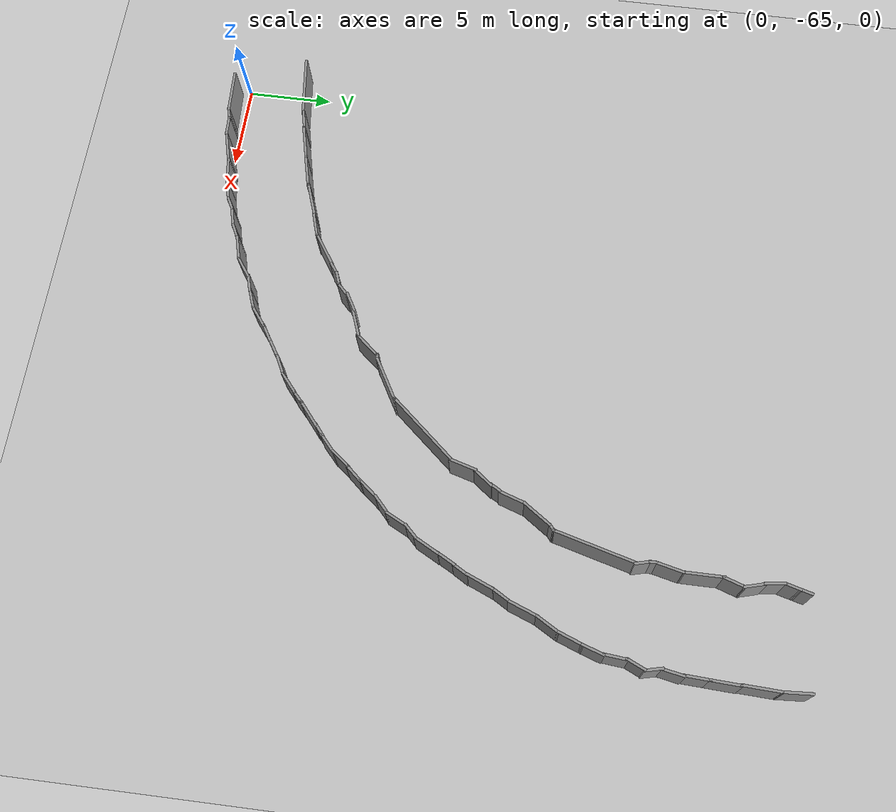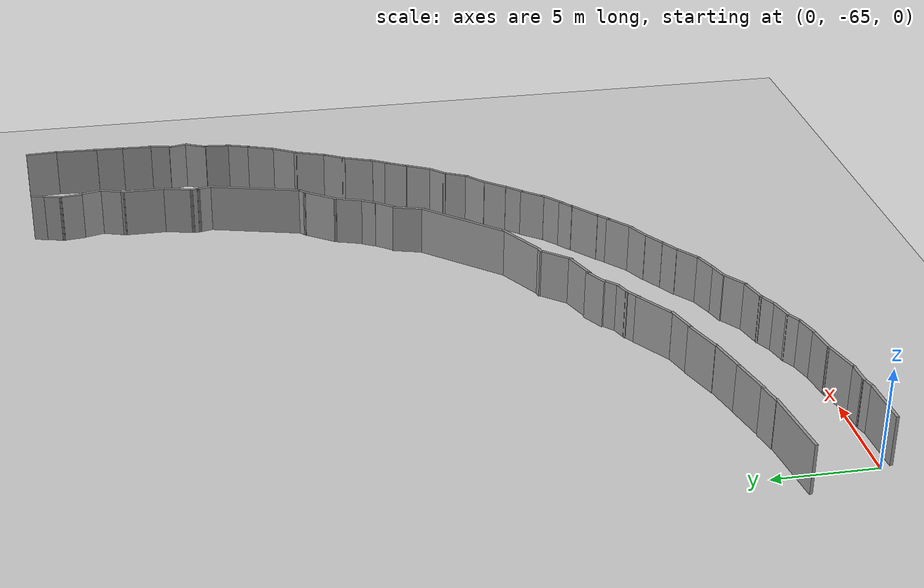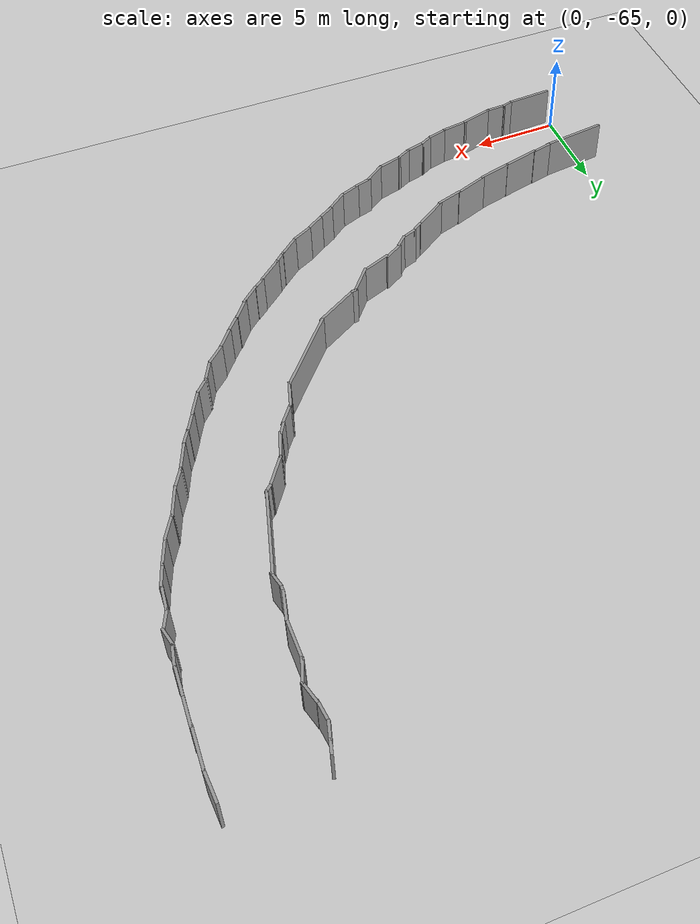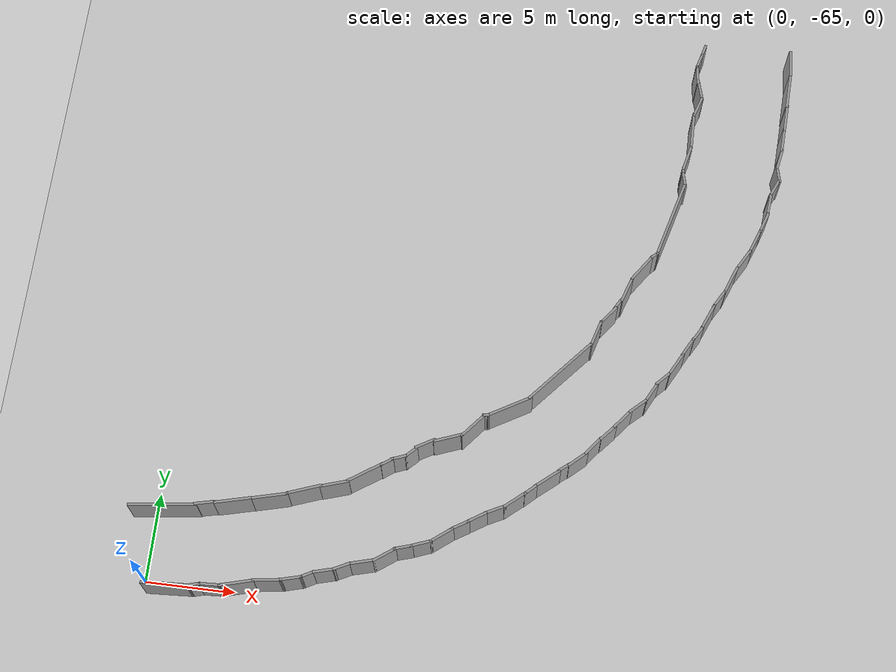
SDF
<sdf version="1.6">
 <world name="default">
  <model name="ground_plane">
   <static>1</static>
   <link name="link">
    <collision name="collision">
     <geometry><plane><normal>0 0 1</normal><size>100 100</size></plane></geometry>
     <surface><friction><ode><mu>100</mu><mu2>50</mu2></ode></friction></surface>
    </collision>
    <visual name="visual">
     <cast_shadows>0</cast_shadows>
     <geometry><plane><normal>0 0 1</normal><size>100 100</size></plane></geometry>
     <material>
      <script><uri>file://media/materials/scripts/gazebo.material</uri><name>Gazebo/Grey</name></script>
     </material>
    </visual>
   </link>
  </model>
  <model name="yuvarlak_sonnn">
   <pose>8.74042 -31.6469 0 0 -0 0</pose>
   <link name="Wall_100">
    <collision name="Wall_100_Collision">
     <geometry><box><size>1.5 0.15 2.5</size></box></geometry>
     <pose>0 0 1.25 0 -0 0</pose>
    </collision>
    <visual name="Wall_100_Visual">
     <pose>0 0 1.25 0 -0 0</pose>
     <geometry><box><size>1.5 0.15 2.5</size></box></geometry>
     <material>
      <script><uri>file://media/materials/scripts/gazebo.material</uri><name>Gazebo/Grey</name></script>
      <ambient>1 1 1 1</ambient>
     </material>
    </visual>
    <pose>3.07036 -31.3705 0 0 -0 0.261799</pose>
   </link>
   <link name="Wall_101">
    <collision name="Wall_101_Collision">
     <geometry><box><size>1.42727 0.15 2.5</size></box></geometry>
     <pose>0 0 1.25 0 -0 0</pose>
    </collision>
    <visual name="Wall_101_Visual">
     <pose>0 0 1.25 0 -0 0</pose>
     <geometry><box><size>1.42727 0.15 2.5</size></box></geometry>
     <material>
      <script><uri>file://media/materials/scripts/gazebo.material</uri><name>Gazebo/Grey</name></script>
      <ambient>1 1 1 1</ambient>
     </material>
    </visual>
    <pose>4.2711 -30.8225 0 0 -0 0.624356</pose>
   </link>
   <link name="Wall_102">
    <collision name="Wall_102_Collision">
     <geometry><box><size>1.0851 0.15 2.5</size></box></geometry>
     <pose>0 0 1.25 0 -0 0</pose>
    </collision>
    <visual name="Wall_102_Visual">
     <pose>0 0 1.25 0 -0 0</pose>
     <geometry><box><size>1.0851 0.15 2.5</size></box></geometry>
     <material>
      <script><uri>file://media/materials/scripts/gazebo.material</uri><name>Gazebo/Grey</name></script>
      <ambient>1 1 1 1</ambient>
     </material>
    </visual>
    <pose>5.21765 -30.297 0 0 -0 0.286317</pose>
   </link>
   <link name="Wall_103">
    <collision name="Wall_103_Collision">
     <geometry><box><size>1.24414 0.15 2.5</size></box></geometry>
     <pose>0 0 1.25 0 -0 0</pose>
    </collision>
    <visual name="Wall_103_Visual">
     <pose>0 0 1.25 0 -0 0</pose>
     <geometry><box><size>1.24414 0.15 2.5</size></box></geometry>
     <material>
      <script><uri>file://media/materials/scripts/gazebo.material</uri><name>Gazebo/Grey</name></script>
      <ambient>1 1 1 1</ambient>
     </material>
    </visual>
    <pose>6.15726 -29.9702 0 0 -0 0.364101</pose>
   </link>
   <link name="Wall_104">
    <collision name="Wall_104_Collision">
     <geometry><box><size>1.47845 0.15 2.5</size></box></geometry>
     <pose>0 0 1.25 0 -0 0</pose>
    </collision>
    <visual name="Wall_104_Visual">
     <pose>0 0 1.25 0 -0 0</pose>
     <geometry><box><size>1.47845 0.15 2.5</size></box></geometry>
     <material>
      <script><uri>file://media/materials/scripts/gazebo.material</uri><name>Gazebo/Grey</name></script>
      <ambient>1 1 1 1</ambient>
     </material>
    </visual>
    <pose>7.2128 -29.3674 0 0 -0 0.66124</pose>
   </link>
   <link name="Wall_105">
    <collision name="Wall_105_Collision">
     <geometry><box><size>1.11262 0.15 2.5</size></box></geometry>
     <pose>0 0 1.25 0 -0 0</pose>
    </collision>
    <visual name="Wall_105_Visual">
     <pose>0 0 1.25 0 -0 0</pose>
     <geometry><box><size>1.11262 0.15 2.5</size></box></geometry>
     <material>
      <script><uri>file://media/materials/scripts/gazebo.material</uri><name>Gazebo/Grey</name></script>
      <ambient>1 1 1 1</ambient>
     </material>
    </visual>
    <pose>8.12806 -28.7093 0 0 -0 0.546743</pose>
   </link>
   <link name="Wall_106">
    <collision name="Wall_106_Collision">
     <geometry><box><size>1.26237 0.15 2.5</size></box></geometry>
     <pose>0 0 1.25 0 -0 0</pose>
    </collision>
    <visual name="Wall_106_Visual">
     <pose>0 0 1.25 0 -0 0</pose>
     <geometry><box><size>1.26237 0.15 2.5</size></box></geometry>
     <material>
      <script><uri>file://media/materials/scripts/gazebo.material</uri><name>Gazebo/Grey</name></script>
      <ambient>1 1 1 1</ambient>
     </material>
    </visual>
    <pose>8.98845 -28.1607 0 0 -0 0.566293</pose>
   </link>
   <link name="Wall_107">
    <collision name="Wall_107_Collision">
     <geometry><box><size>1.23903 0.15 2.5</size></box></geometry>
     <pose>0 0 1.25 0 -0 0</pose>
    </collision>
    <visual name="Wall_107_Visual">
     <pose>0 0 1.25 0 -0 0</pose>
     <geometry><box><size>1.23903 0.15 2.5</size></box></geometry>
     <material>
      <script><uri>file://media/materials/scripts/gazebo.material</uri><name>Gazebo/Grey</name></script>
      <ambient>1 1 1 1</ambient>
     </material>
    </visual>
    <pose>9.92407 -27.6175 0 0 -0 0.466349</pose>
   </link>
   <link name="Wall_108">
    <collision name="Wall_108_Collision">
     <geometry><box><size>1.50096 0.15 2.5</size></box></geometry>
     <pose>0 0 1.25 0 -0 0</pose>
    </collision>
    <visual name="Wall_108_Visual">
     <pose>0 0 1.25 0 -0 0</pose>
     <geometry><box><size>1.50096 0.15 2.5</size></box></geometry>
     <material>
      <script><uri>file://media/materials/scripts/gazebo.material</uri><name>Gazebo/Grey</name></script>
      <ambient>1 1 1 1</ambient>
     </material>
    </visual>
    <pose>10.9447 -26.9346 0 0 -0 0.705649</pose>
   </link>
   <link name="Wall_109">
    <collision name="Wall_109_Collision">
     <geometry><box><size>0.858084 0.15 2.5</size></box></geometry>
     <pose>0 0 1.25 0 -0 0</pose>
    </collision>
    <visual name="Wall_109_Visual">
     <pose>0 0 1.25 0 -0 0</pose>
     <geometry><box><size>0.858084 0.15 2.5</size></box></geometry>
     <material>
      <script><uri>file://media/materials/scripts/gazebo.material</uri><name>Gazebo/Grey</name></script>
      <ambient>1 1 1 1</ambient>
     </material>
    </visual>
    <pose>11.7187 -26.2761 0 0 -0 0.746849</pose>
   </link>
   <link name="Wall_110">
    <collision name="Wall_110_Collision">
     <geometry><box><size>1.72755 0.15 2.5</size></box></geometry>
     <pose>0 0 1.25 0 -0 0</pose>
    </collision>
    <visual name="Wall_110_Visual">
     <pose>0 0 1.25 0 -0 0</pose>
     <geometry><box><size>1.72755 0.15 2.5</size></box></geometry>
     <material>
      <script><uri>file://media/materials/scripts/gazebo.material</uri><name>Gazebo/Grey</name></script>
      <ambient>1 1 1 1</ambient>
     </material>
    </visual>
    <pose>12.5647 -25.5311 0 0 -0 0.693986</pose>
   </link>
   <link name="Wall_111">
    <collision name="Wall_111_Collision">
     <geometry><box><size>0.824869 0.15 2.5</size></box></geometry>
     <pose>0 0 1.25 0 -0 0</pose>
    </collision>
    <visual name="Wall_111_Visual">
     <pose>0 0 1.25 0 -0 0</pose>
     <geometry><box><size>0.824869 0.15 2.5</size></box></geometry>
     <material>
      <script><uri>file://media/materials/scripts/gazebo.material</uri><name>Gazebo/Grey</name></script>
      <ambient>1 1 1 1</ambient>
     </material>
    </visual>
    <pose>13.4335 -24.7838 0 0 -0 0.67983</pose>
   </link>
   <link name="Wall_112">
    <collision name="Wall_112_Collision">
     <geometry><box><size>1.3167 0.15 2.5</size></box></geometry>
     <pose>0 0 1.25 0 -0 0</pose>
    </collision>
    <visual name="Wall_112_Visual">
     <pose>0 0 1.25 0 -0 0</pose>
     <geometry><box><size>1.3167 0.15 2.5</size></box></geometry>
     <material>
      <script><uri>file://media/materials/scripts/gazebo.material</uri><name>Gazebo/Grey</name></script>
      <ambient>1 1 1 1</ambient>
     </material>
    </visual>
    <pose>14.1307 -24.2134 0 0 -0 0.72975</pose>
   </link>
   <link name="Wall_113">
    <collision name="Wall_113_Collision">
     <geometry><box><size>1.33483 0.15 2.5</size></box></geometry>
     <pose>0 0 1.25 0 -0 0</pose>
    </collision>
    <visual name="Wall_113_Visual">
     <pose>0 0 1.25 0 -0 0</pose>
     <geometry><box><size>1.33483 0.15 2.5</size></box></geometry>
     <material>
      <script><uri>file://media/materials/scripts/gazebo.material</uri><name>Gazebo/Grey</name></script>
      <ambient>1 1 1 1</ambient>
     </material>
    </visual>
    <pose>14.9006 -23.3584 0 0 -0 0.905511</pose>
   </link>
   <link name="Wall_114">
    <collision name="Wall_114_Collision">
     <geometry><box><size>1.19384 0.15 2.5</size></box></geometry>
     <pose>0 0 1.25 0 -0 0</pose>
    </collision>
    <visual name="Wall_114_Visual">
     <pose>0 0 1.25 0 -0 0</pose>
     <geometry><box><size>1.19384 0.15 2.5</size></box></geometry>
     <material>
      <script><uri>file://media/materials/scripts/gazebo.material</uri><name>Gazebo/Grey</name></script>
      <ambient>1 1 1 1</ambient>
     </material>
    </visual>
    <pose>15.6416 -22.5005 0 0 -0 0.849315</pose>
   </link>
   <link name="Wall_115">
    <collision name="Wall_115_Collision">
     <geometry><box><size>1.40101 0.15 2.5</size></box></geometry>
     <pose>0 0 1.25 0 -0 0</pose>
    </collision>
    <visual name="Wall_115_Visual">
     <pose>0 0 1.25 0 -0 0</pose>
     <geometry><box><size>1.40101 0.15 2.5</size></box></geometry>
     <material>
      <script><uri>file://media/materials/scripts/gazebo.material</uri><name>Gazebo/Grey</name></script>
      <ambient>1 1 1 1</ambient>
     </material>
    </visual>
    <pose>16.3609 -21.6234 0 0 -0 0.887897</pose>
   </link>
   <link name="Wall_116">
    <collision name="Wall_116_Collision">
     <geometry><box><size>1.24258 0.15 2.5</size></box></geometry>
     <pose>0 0 1.25 0 -0 0</pose>
    </collision>
    <visual name="Wall_116_Visual">
     <pose>0 0 1.25 0 -0 0</pose>
     <geometry><box><size>1.24258 0.15 2.5</size></box></geometry>
     <material>
      <script><uri>file://media/materials/scripts/gazebo.material</uri><name>Gazebo/Grey</name></script>
      <ambient>1 1 1 1</ambient>
     </material>
    </visual>
    <pose>17.1372 -20.7678 0 0 -0 0.744804</pose>
   </link>
   <link name="Wall_117">
    <collision name="Wall_117_Collision">
     <geometry><box><size>1.37168 0.15 2.5</size></box></geometry>
     <pose>0 0 1.25 0 -0 0</pose>
    </collision>
    <visual name="Wall_117_Visual">
     <pose>0 0 1.25 0 -0 0</pose>
     <geometry><box><size>1.37168 0.15 2.5</size></box></geometry>
     <material>
      <script><uri>file://media/materials/scripts/gazebo.material</uri><name>Gazebo/Grey</name></script>
      <ambient>1 1 1 1</ambient>
     </material>
    </visual>
    <pose>17.8361 -19.8532 0 0 -0 1.09984</pose>
   </link>
   <link name="Wall_118">
    <collision name="Wall_118_Collision">
     <geometry><box><size>1.00834 0.15 2.5</size></box></geometry>
     <pose>0 0 1.25 0 -0 0</pose>
    </collision>
    <visual name="Wall_118_Visual">
     <pose>0 0 1.25 0 -0 0</pose>
     <geometry><box><size>1.00834 0.15 2.5</size></box></geometry>
     <material>
      <script><uri>file://media/materials/scripts/gazebo.material</uri><name>Gazebo/Grey</name></script>
      <ambient>1 1 1 1</ambient>
     </material>
    </visual>
    <pose>18.3915 -19.0004 0 0 -0 0.801969</pose>
   </link>
   <link name="Wall_119">
    <collision name="Wall_119_Collision">
     <geometry><box><size>1.58797 0.15 2.5</size></box></geometry>
     <pose>0 0 1.25 0 -0 0</pose>
    </collision>
    <visual name="Wall_119_Visual">
     <pose>0 0 1.25 0 -0 0</pose>
     <geometry><box><size>1.58797 0.15 2.5</size></box></geometry>
     <material>
      <script><uri>file://media/materials/scripts/gazebo.material</uri><name>Gazebo/Grey</name></script>
      <ambient>1 1 1 1</ambient>
     </material>
    </visual>
    <pose>19.0475 -18.0571 0 0 -0 1.08217</pose>
   </link>
   <link name="Wall_120">
    <collision name="Wall_120_Collision">
     <geometry><box><size>1.23903 0.15 2.5</size></box></geometry>
     <pose>0 0 1.25 0 -0 0</pose>
    </collision>
    <visual name="Wall_120_Visual">
     <pose>0 0 1.25 0 -0 0</pose>
     <geometry><box><size>1.23903 0.15 2.5</size></box></geometry>
     <material>
      <script><uri>file://media/materials/scripts/gazebo.material</uri><name>Gazebo/Grey</name></script>
      <ambient>1 1 1 1</ambient>
     </material>
    </visual>
    <pose>19.6231 -16.9428 0 0 -0 1.07682</pose>
   </link>
   <link name="Wall_121">
    <collision name="Wall_121_Collision">
     <geometry><box><size>1 0.15 2.5</size></box></geometry>
     <pose>0 0 1.25 0 -0 0</pose>
    </collision>
    <visual name="Wall_121_Visual">
     <pose>0 0 1.25 0 -0 0</pose>
     <geometry><box><size>1 0.15 2.5</size></box></geometry>
     <material>
      <script><uri>file://media/materials/scripts/gazebo.material</uri><name>Gazebo/Grey</name></script>
      <ambient>1 1 1 1</ambient>
     </material>
    </visual>
    <pose>20.1139 -16.0953 0 0 -0 1.0472</pose>
   </link>
   <link name="Wall_122">
    <collision name="Wall_122_Collision">
     <geometry><box><size>1.69231 0.15 2.5</size></box></geometry>
     <pose>0 0 1.25 0 -0 0</pose>
    </collision>
    <visual name="Wall_122_Visual">
     <pose>0 0 1.25 0 -0 0</pose>
     <geometry><box><size>1.69231 0.15 2.5</size></box></geometry>
     <material>
      <script><uri>file://media/materials/scripts/gazebo.material</uri><name>Gazebo/Grey</name></script>
      <ambient>1 1 1 1</ambient>
     </material>
    </visual>
    <pose>20.6017 -15.0149 0 0 -0 1.17771</pose>
   </link>
   <link name="Wall_123">
    <collision name="Wall_123_Collision">
     <geometry><box><size>1.25 0.15 2.5</size></box></geometry>
     <pose>0 0 1.25 0 -0 0</pose>
    </collision>
    <visual name="Wall_123_Visual">
     <pose>0 0 1.25 0 -0 0</pose>
     <geometry><box><size>1.25 0.15 2.5</size></box></geometry>
     <material>
      <script><uri>file://media/materials/scripts/gazebo.material</uri><name>Gazebo/Grey</name></script>
      <ambient>1 1 1 1</ambient>
     </material>
    </visual>
    <pose>21.1519 -13.8464 0 0 -0 1.0472</pose>
   </link>
   <link name="Wall_124">
    <collision name="Wall_124_Collision">
     <geometry><box><size>1.78247 0.15 2.5</size></box></geometry>
     <pose>0 0 1.25 0 -0 0</pose>
    </collision>
    <visual name="Wall_124_Visual">
     <pose>0 0 1.25 0 -0 0</pose>
     <geometry><box><size>1.78247 0.15 2.5</size></box></geometry>
     <material>
      <script><uri>file://media/materials/scripts/gazebo.material</uri><name>Gazebo/Grey</name></script>
      <ambient>1 1 1 1</ambient>
     </material>
    </visual>
    <pose>21.7364 -12.5868 0 0 -0 1.20839</pose>
   </link>
   <link name="Wall_125">
    <collision name="Wall_125_Collision">
     <geometry><box><size>1.5 0.15 2.5</size></box></geometry>
     <pose>0 0 1.25 0 -0 0</pose>
    </collision>
    <visual name="Wall_125_Visual">
     <pose>0 0 1.25 0 -0 0</pose>
     <geometry><box><size>1.5 0.15 2.5</size></box></geometry>
     <material>
      <script><uri>file://media/materials/scripts/gazebo.material</uri><name>Gazebo/Grey</name></script>
      <ambient>1 1 1 1</ambient>
     </material>
    </visual>
    <pose>22.3633 -11.2591 0 0 -0 1.0472</pose>
   </link>
   <link name="Wall_126">
    <collision name="Wall_126_Collision">
     <geometry><box><size>1.52629 0.15 2.5</size></box></geometry>
     <pose>0 0 1.25 0 -0 0</pose>
    </collision>
    <visual name="Wall_126_Visual">
     <pose>0 0 1.25 0 -0 0</pose>
     <geometry><box><size>1.52629 0.15 2.5</size></box></geometry>
     <material>
      <script><uri>file://media/materials/scripts/gazebo.material</uri><name>Gazebo/Grey</name></script>
      <ambient>1 1 1 1</ambient>
     </material>
    </visual>
    <pose>22.9453 -10.0112 0 0 -0 1.2076</pose>
   </link>
   <link name="Wall_127">
    <collision name="Wall_127_Collision">
     <geometry><box><size>1.33509 0.15 2.5</size></box></geometry>
     <pose>0 0 1.25 0 -0 0</pose>
    </collision>
    <visual name="Wall_127_Visual">
     <pose>0 0 1.25 0 -0 0</pose>
     <geometry><box><size>1.33509 0.15 2.5</size></box></geometry>
     <material>
      <script><uri>file://media/materials/scripts/gazebo.material</uri><name>Gazebo/Grey</name></script>
      <ambient>1 1 1 1</ambient>
     </material>
    </visual>
    <pose>23.378 -8.80605 0 0 -0 1.24752</pose>
   </link>
   <link name="Wall_128">
    <collision name="Wall_128_Collision">
     <geometry><box><size>1.36924 0.15 2.5</size></box></geometry>
     <pose>0 0 1.25 0 -0 0</pose>
    </collision>
    <visual name="Wall_128_Visual">
     <pose>0 0 1.25 0 -0 0</pose>
     <geometry><box><size>1.36924 0.15 2.5</size></box></geometry>
     <material>
      <script><uri>file://media/materials/scripts/gazebo.material</uri><name>Gazebo/Grey</name></script>
      <ambient>1 1 1 1</ambient>
     </material>
    </visual>
    <pose>23.5937 -7.63736 0 0 -0 1.47531</pose>
   </link>
   <link name="Wall_129">
    <collision name="Wall_129_Collision">
     <geometry><box><size>1.20468 0.15 2.5</size></box></geometry>
     <pose>0 0 1.25 0 -0 0</pose>
    </collision>
    <visual name="Wall_129_Visual">
     <pose>0 0 1.25 0 -0 0</pose>
     <geometry><box><size>1.20468 0.15 2.5</size></box></geometry>
     <material>
      <script><uri>file://media/materials/scripts/gazebo.material</uri><name>Gazebo/Grey</name></script>
      <ambient>1 1 1 1</ambient>
     </material>
    </visual>
    <pose>23.8384 -6.54996 0 0 -0 1.14639</pose>
   </link>
   <link name="Wall_130">
    <collision name="Wall_130_Collision">
     <geometry><box><size>1.05244 0.15 2.5</size></box></geometry>
     <pose>0 0 1.25 0 -0 0</pose>
    </collision>
    <visual name="Wall_130_Visual">
     <pose>0 0 1.25 0 -0 0</pose>
     <geometry><box><size>1.05244 0.15 2.5</size></box></geometry>
     <material>
      <script><uri>file://media/materials/scripts/gazebo.material</uri><name>Gazebo/Grey</name></script>
      <ambient>1 1 1 1</ambient>
     </material>
    </visual>
    <pose>23.9824 -5.63028 0 0 -0 1.8028</pose>
   </link>
   <link name="Wall_131">
    <collision name="Wall_131_Collision">
     <geometry><box><size>1.28879 0.15 2.5</size></box></geometry>
     <pose>0 0 1.25 0 -0 0</pose>
    </collision>
    <visual name="Wall_131_Visual">
     <pose>0 0 1.25 0 -0 0</pose>
     <geometry><box><size>1.28879 0.15 2.5</size></box></geometry>
     <material>
      <script><uri>file://media/materials/scripts/gazebo.material</uri><name>Gazebo/Grey</name></script>
      <ambient>1 1 1 1</ambient>
     </material>
    </visual>
    <pose>24.0142 -4.63151 0 0 -0 1.38539</pose>
   </link>
   <link name="Wall_132">
    <collision name="Wall_132_Collision">
     <geometry><box><size>1.53245 0.15 2.5</size></box></geometry>
     <pose>0 0 1.25 0 -0 0</pose>
    </collision>
    <visual name="Wall_132_Visual">
     <pose>0 0 1.25 0 -0 0</pose>
     <geometry><box><size>1.53245 0.15 2.5</size></box></geometry>
     <material>
      <script><uri>file://media/materials/scripts/gazebo.material</uri><name>Gazebo/Grey</name></script>
      <ambient>1 1 1 1</ambient>
     </material>
    </visual>
    <pose>24.1244 -3.38158 0 0 -0 1.51894</pose>
   </link>
   <link name="Wall_133">
    <collision name="Wall_133_Collision">
     <geometry><box><size>1.71826 0.15 2.5</size></box></geometry>
     <pose>0 0 1.25 0 -0 0</pose>
    </collision>
    <visual name="Wall_133_Visual">
     <pose>0 0 1.25 0 -0 0</pose>
     <geometry><box><size>1.71826 0.15 2.5</size></box></geometry>
     <material>
      <script><uri>file://media/materials/scripts/gazebo.material</uri><name>Gazebo/Grey</name></script>
      <ambient>1 1 1 1</ambient>
     </material>
    </visual>
    <pose>24.198 -1.93866 0 0 -0 1.52261</pose>
   </link>
   <link name="Wall_134">
    <collision name="Wall_134_Collision">
     <geometry><box><size>2.22141 0.15 2.5</size></box></geometry>
     <pose>0 0 1.25 0 -0 0</pose>
    </collision>
    <visual name="Wall_134_Visual">
     <pose>0 0 1.25 0 -0 0</pose>
     <geometry><box><size>2.22141 0.15 2.5</size></box></geometry>
     <material>
      <script><uri>file://media/materials/scripts/gazebo.material</uri><name>Gazebo/Grey</name></script>
      <ambient>1 1 1 1</ambient>
     </material>
    </visual>
    <pose>24.2507 -0.120733 0 0 -0 1.52688</pose>
   </link>
   <link name="Wall_135">
    <collision name="Wall_135_Collision">
     <geometry><box><size>1.67425 0.15 2.5</size></box></geometry>
     <pose>0 0 1.25 0 -0 0</pose>
    </collision>
    <visual name="Wall_135_Visual">
     <pose>0 0 1.25 0 -0 0</pose>
     <geometry><box><size>1.67425 0.15 2.5</size></box></geometry>
     <material>
      <script><uri>file://media/materials/scripts/gazebo.material</uri><name>Gazebo/Grey</name></script>
      <ambient>1 1 1 1</ambient>
     </material>
    </visual>
    <pose>24.2494 1.70525 0 0 -0 1.63214</pose>
   </link>
   <link name="Wall_271">
    <collision name="Wall_271_Collision">
     <geometry><box><size>0.769947 0.15 2.5</size></box></geometry>
     <pose>0 0 1.25 0 -0 0</pose>
    </collision>
    <visual name="Wall_271_Visual">
     <pose>0 0 1.25 0 -0 0</pose>
     <geometry><box><size>0.769947 0.15 2.5</size></box></geometry>
     <material>
      <script><uri>file://media/materials/scripts/gazebo.material</uri><name>Gazebo/Grey</name></script>
      <ambient>1 1 1 1</ambient>
     </material>
    </visual>
    <pose>19.0454 1.9527 0 0 0 -1.82703</pose>
   </link>
   <link name="Wall_272">
    <collision name="Wall_272_Collision">
     <geometry><box><size>1 0.15 2.5</size></box></geometry>
     <pose>0 0 1.25 0 -0 0</pose>
    </collision>
    <visual name="Wall_272_Visual">
     <pose>0 0 1.25 0 -0 0</pose>
     <geometry><box><size>1 0.15 2.5</size></box></geometry>
     <material>
      <script><uri>file://media/materials/scripts/gazebo.material</uri><name>Gazebo/Grey</name></script>
      <ambient>1 1 1 1</ambient>
     </material>
    </visual>
    <pose>18.8568 1.24232 0 0 0 -1.8326</pose>
   </link>
   <link name="Wall_273">
    <collision name="Wall_273_Collision">
     <geometry><box><size>1.19076 0.15 2.5</size></box></geometry>
     <pose>0 0 1.25 0 -0 0</pose>
    </collision>
    <visual name="Wall_273_Visual">
     <pose>0 0 1.25 0 -0 0</pose>
     <geometry><box><size>1.19076 0.15 2.5</size></box></geometry>
     <material>
      <script><uri>file://media/materials/scripts/gazebo.material</uri><name>Gazebo/Grey</name></script>
      <ambient>1 1 1 1</ambient>
     </material>
    </visual>
    <pose>18.808 0.315034 0 0 0 -1.45295</pose>
   </link>
   <link name="Wall_274">
    <collision name="Wall_274_Collision">
     <geometry><box><size>1.25 0.15 2.5</size></box></geometry>
     <pose>0 0 1.25 0 -0 0</pose>
    </collision>
    <visual name="Wall_274_Visual">
     <pose>0 0 1.25 0 -0 0</pose>
     <geometry><box><size>1.25 0.15 2.5</size></box></geometry>
     <material>
      <script><uri>file://media/materials/scripts/gazebo.material</uri><name>Gazebo/Grey</name></script>
      <ambient>1 1 1 1</ambient>
     </material>
    </visual>
    <pose>19.0421 -0.732996 0 0 0 -1.309</pose>
   </link>
   <link name="Wall_275">
    <collision name="Wall_275_Collision">
     <geometry><box><size>1.34024 0.15 2.5</size></box></geometry>
     <pose>0 0 1.25 0 -0 0</pose>
    </collision>
    <visual name="Wall_275_Visual">
     <pose>0 0 1.25 0 -0 0</pose>
     <geometry><box><size>1.34024 0.15 2.5</size></box></geometry>
     <material>
      <script><uri>file://media/materials/scripts/gazebo.material</uri><name>Gazebo/Grey</name></script>
      <ambient>1 1 1 1</ambient>
     </material>
    </visual>
    <pose>18.9954 -1.82854 0 0 0 -1.89415</pose>
   </link>
   <link name="Wall_276">
    <collision name="Wall_276_Collision">
     <geometry><box><size>2.25 0.15 2.5</size></box></geometry>
     <pose>0 0 1.25 0 -0 0</pose>
    </collision>
    <visual name="Wall_276_Visual">
     <pose>0 0 1.25 0 -0 0</pose>
     <geometry><box><size>2.25 0.15 2.5</size></box></geometry>
     <material>
      <script><uri>file://media/materials/scripts/gazebo.material</uri><name>Gazebo/Grey</name></script>
      <ambient>1 1 1 1</ambient>
     </material>
    </visual>
    <pose>18.8063 -3.39629 0 0 0 -1.5708</pose>
   </link>
   <link name="Wall_277">
    <collision name="Wall_277_Collision">
     <geometry><box><size>1.6107 0.15 2.5</size></box></geometry>
     <pose>0 0 1.25 0 -0 0</pose>
    </collision>
    <visual name="Wall_277_Visual">
     <pose>0 0 1.25 0 -0 0</pose>
     <geometry><box><size>1.6107 0.15 2.5</size></box></geometry>
     <material>
      <script><uri>file://media/materials/scripts/gazebo.material</uri><name>Gazebo/Grey</name></script>
      <ambient>1 1 1 1</ambient>
     </material>
    </visual>
    <pose>18.6402 -5.20402 0 0 0 -1.80026</pose>
   </link>
   <link name="Wall_278">
    <collision name="Wall_278_Collision">
     <geometry><box><size>0.5 0.15 2.5</size></box></geometry>
     <pose>0 0 1.25 0 -0 0</pose>
    </collision>
    <visual name="Wall_278_Visual">
     <pose>0 0 1.25 0 -0 0</pose>
     <geometry><box><size>0.5 0.15 2.5</size></box></geometry>
     <material>
      <script><uri>file://media/materials/scripts/gazebo.material</uri><name>Gazebo/Grey</name></script>
      <ambient>1 1 1 1</ambient>
     </material>
    </visual>
    <pose>18.474 -6.09022 0 0 0 -1.5708</pose>
   </link>
   <link name="Wall_279">
    <collision name="Wall_279_Collision">
     <geometry><box><size>0.930244 0.15 2.5</size></box></geometry>
     <pose>0 0 1.25 0 -0 0</pose>
    </collision>
    <visual name="Wall_279_Visual">
     <pose>0 0 1.25 0 -0 0</pose>
     <geometry><box><size>0.930244 0.15 2.5</size></box></geometry>
     <material>
      <script><uri>file://media/materials/scripts/gazebo.material</uri><name>Gazebo/Grey</name></script>
      <ambient>1 1 1 1</ambient>
     </material>
    </visual>
    <pose>18.569 -6.64362 0 0 0 -1.32498</pose>
   </link>
   <link name="Wall_288">
    <collision name="Wall_288_Collision">
     <geometry><box><size>0.525324 0.15 2.5</size></box></geometry>
     <pose>0 0 1.25 0 -0 0</pose>
    </collision>
    <visual name="Wall_288_Visual">
     <pose>0 0 1.25 0 -0 0</pose>
     <geometry><box><size>0.525324 0.15 2.5</size></box></geometry>
     <material>
      <script><uri>file://media/materials/scripts/gazebo.material</uri><name>Gazebo/Grey</name></script>
      <ambient>1 1 1 1</ambient>
     </material>
    </visual>
    <pose>17.2818 -11.5924 0 0 0 -2.3973</pose>
   </link>
   <link name="Wall_289">
    <collision name="Wall_289_Collision">
     <geometry><box><size>1.92637 0.15 2.5</size></box></geometry>
     <pose>0 0 1.25 0 -0 0</pose>
    </collision>
    <visual name="Wall_289_Visual">
     <pose>0 0 1.25 0 -0 0</pose>
     <geometry><box><size>1.92637 0.15 2.5</size></box></geometry>
     <material>
      <script><uri>file://media/materials/scripts/gazebo.material</uri><name>Gazebo/Grey</name></script>
      <ambient>1 1 1 1</ambient>
     </material>
    </visual>
    <pose>16.638 -12.4497 0 0 0 -2.17659</pose>
   </link>
   <link name="Wall_290">
    <collision name="Wall_290_Collision">
     <geometry><box><size>1.61208 0.15 2.5</size></box></geometry>
     <pose>0 0 1.25 0 -0 0</pose>
    </collision>
    <visual name="Wall_290_Visual">
     <pose>0 0 1.25 0 -0 0</pose>
     <geometry><box><size>1.61208 0.15 2.5</size></box></geometry>
     <material>
      <script><uri>file://media/materials/scripts/gazebo.material</uri><name>Gazebo/Grey</name></script>
      <ambient>1 1 1 1</ambient>
     </material>
    </visual>
    <pose>15.9015 -13.8734 0 0 0 -1.89203</pose>
   </link>
   <link name="Wall_291">
    <collision name="Wall_291_Collision">
     <geometry><box><size>0.75 0.15 2.5</size></box></geometry>
     <pose>0 0 1.25 0 -0 0</pose>
    </collision>
    <visual name="Wall_291_Visual">
     <pose>0 0 1.25 0 -0 0</pose>
     <geometry><box><size>0.75 0.15 2.5</size></box></geometry>
     <material>
      <script><uri>file://media/materials/scripts/gazebo.material</uri><name>Gazebo/Grey</name></script>
      <ambient>1 1 1 1</ambient>
     </material>
    </visual>
    <pose>15.4741 -14.8269 0 0 0 -2.0944</pose>
   </link>
   <link name="Wall_292">
    <collision name="Wall_292_Collision">
     <geometry><box><size>1.31222 0.15 2.5</size></box></geometry>
     <pose>0 0 1.25 0 -0 0</pose>
    </collision>
    <visual name="Wall_292_Visual">
     <pose>0 0 1.25 0 -0 0</pose>
     <geometry><box><size>1.31222 0.15 2.5</size></box></geometry>
     <material>
      <script><uri>file://media/materials/scripts/gazebo.material</uri><name>Gazebo/Grey</name></script>
      <ambient>1 1 1 1</ambient>
     </material>
    </visual>
    <pose>15.0206 -15.5506 0 0 0 -2.21728</pose>
   </link>
   <link name="Wall_293">
    <collision name="Wall_293_Collision">
     <geometry><box><size>1.64663 0.15 2.5</size></box></geometry>
     <pose>0 0 1.25 0 -0 0</pose>
    </collision>
    <visual name="Wall_293_Visual">
     <pose>0 0 1.25 0 -0 0</pose>
     <geometry><box><size>1.64663 0.15 2.5</size></box></geometry>
     <material>
      <script><uri>file://media/materials/scripts/gazebo.material</uri><name>Gazebo/Grey</name></script>
      <ambient>1 1 1 1</ambient>
     </material>
    </visual>
    <pose>14.4179 -16.7338 0 0 0 -1.84981</pose>
   </link>
   <link name="Wall_294">
    <collision name="Wall_294_Collision">
     <geometry><box><size>4.81192 0.15 2.5</size></box></geometry>
     <pose>0 0 1.25 0 -0 0</pose>
    </collision>
    <visual name="Wall_294_Visual">
     <pose>0 0 1.25 0 -0 0</pose>
     <geometry><box><size>4.81192 0.15 2.5</size></box></geometry>
     <material>
      <script><uri>file://media/materials/scripts/gazebo.material</uri><name>Gazebo/Grey</name></script>
      <ambient>1 1 1 1</ambient>
     </material>
    </visual>
    <pose>12.6369 -19.2191 0 0 0 -2.28192</pose>
   </link>
   <link name="Wall_299">
    <collision name="Wall_299_Collision">
     <geometry><box><size>0.399537 0.15 2.5</size></box></geometry>
     <pose>0 0 1.25 0 -0 0</pose>
    </collision>
    <visual name="Wall_299_Visual">
     <pose>0 0 1.25 0 -0 0</pose>
     <geometry><box><size>0.399537 0.15 2.5</size></box></geometry>
     <material>
      <script><uri>file://media/materials/scripts/gazebo.material</uri><name>Gazebo/Grey</name></script>
      <ambient>1 1 1 1</ambient>
     </material>
    </visual>
    <pose>8.79417 -22.3048 0 0 0 -2.98365</pose>
   </link>
   <link name="Wall_300">
    <collision name="Wall_300_Collision">
     <geometry><box><size>1.76805 0.15 2.5</size></box></geometry>
     <pose>0 0 1.25 0 -0 0</pose>
    </collision>
    <visual name="Wall_300_Visual">
     <pose>0 0 1.25 0 -0 0</pose>
     <geometry><box><size>1.76805 0.15 2.5</size></box></geometry>
     <material>
      <script><uri>file://media/materials/scripts/gazebo.material</uri><name>Gazebo/Grey</name></script>
      <ambient>1 1 1 1</ambient>
     </material>
    </visual>
    <pose>8.15452 -23.0006 0 0 0 -2.26315</pose>
   </link>
   <link name="Wall_301">
    <collision name="Wall_301_Collision">
     <geometry><box><size>1.74473 0.15 2.5</size></box></geometry>
     <pose>0 0 1.25 0 -0 0</pose>
    </collision>
    <visual name="Wall_301_Visual">
     <pose>0 0 1.25 0 -0 0</pose>
     <geometry><box><size>1.74473 0.15 2.5</size></box></geometry>
     <material>
      <script><uri>file://media/materials/scripts/gazebo.material</uri><name>Gazebo/Grey</name></script>
      <ambient>1 1 1 1</ambient>
     </material>
    </visual>
    <pose>6.893 -23.8539 0 0 0 -2.77743</pose>
   </link>
   <link name="Wall_302">
    <collision name="Wall_302_Collision">
     <geometry><box><size>1.25 0.15 2.5</size></box></geometry>
     <pose>0 0 1.25 0 -0 0</pose>
    </collision>
    <visual name="Wall_302_Visual">
     <pose>0 0 1.25 0 -0 0</pose>
     <geometry><box><size>1.25 0.15 2.5</size></box></geometry>
     <material>
      <script><uri>file://media/materials/scripts/gazebo.material</uri><name>Gazebo/Grey</name></script>
      <ambient>1 1 1 1</ambient>
     </material>
    </visual>
    <pose>5.67161 -24.3315 0 0 0 -2.61799</pose>
   </link>
   <link name="Wall_303">
    <collision name="Wall_303_Collision">
     <geometry><box><size>0.84819 0.15 2.5</size></box></geometry>
     <pose>0 0 1.25 0 -0 0</pose>
    </collision>
    <visual name="Wall_303_Visual">
     <pose>0 0 1.25 0 -0 0</pose>
     <geometry><box><size>0.84819 0.15 2.5</size></box></geometry>
     <material>
      <script><uri>file://media/materials/scripts/gazebo.material</uri><name>Gazebo/Grey</name></script>
      <ambient>1 1 1 1</ambient>
     </material>
    </visual>
    <pose>4.94594 -24.9322 0 0 0 -2.3664</pose>
   </link>
   <link name="Wall_306">
    <collision name="Wall_306_Collision">
     <geometry><box><size>0.904327 0.15 2.5</size></box></geometry>
     <pose>0 0 1.25 0 -0 0</pose>
    </collision>
    <visual name="Wall_306_Visual">
     <pose>0 0 1.25 0 -0 0</pose>
     <geometry><box><size>0.904327 0.15 2.5</size></box></geometry>
     <material>
      <script><uri>file://media/materials/scripts/gazebo.material</uri><name>Gazebo/Grey</name></script>
      <ambient>1 1 1 1</ambient>
     </material>
    </visual>
    <pose>4.31306 -25.3095 0 0 0 -2.78126</pose>
   </link>
   <link name="Wall_307">
    <collision name="Wall_307_Collision">
     <geometry><box><size>0.820949 0.15 2.5</size></box></geometry>
     <pose>0 0 1.25 0 -0 0</pose>
    </collision>
    <visual name="Wall_307_Visual">
     <pose>0 0 1.25 0 -0 0</pose>
     <geometry><box><size>0.820949 0.15 2.5</size></box></geometry>
     <material>
      <script><uri>file://media/materials/scripts/gazebo.material</uri><name>Gazebo/Grey</name></script>
      <ambient>1 1 1 1</ambient>
     </material>
    </visual>
    <pose>3.71661 -25.6359 0 0 0 -2.52707</pose>
   </link>
   <link name="Wall_308">
    <collision name="Wall_308_Collision">
     <geometry><box><size>2.22818 0.15 2.5</size></box></geometry>
     <pose>0 0 1.25 0 -0 0</pose>
    </collision>
    <visual name="Wall_308_Visual">
     <pose>0 0 1.25 0 -0 0</pose>
     <geometry><box><size>2.22818 0.15 2.5</size></box></geometry>
     <material>
      <script><uri>file://media/materials/scripts/gazebo.material</uri><name>Gazebo/Grey</name></script>
      <ambient>1 1 1 1</ambient>
     </material>
    </visual>
    <pose>2.57965 -26.3777 0 0 0 -2.55061</pose>
   </link>
   <link name="Wall_309">
    <collision name="Wall_309_Collision">
     <geometry><box><size>1.63412 0.15 2.5</size></box></geometry>
     <pose>0 0 1.25 0 -0 0</pose>
    </collision>
    <visual name="Wall_309_Visual">
     <pose>0 0 1.25 0 -0 0</pose>
     <geometry><box><size>1.63412 0.15 2.5</size></box></geometry>
     <material>
      <script><uri>file://media/materials/scripts/gazebo.material</uri><name>Gazebo/Grey</name></script>
      <ambient>1 1 1 1</ambient>
     </material>
    </visual>
    <pose>1.00869 -27.2091 0 0 0 -2.83796</pose>
   </link>
   <link name="Wall_310">
    <collision name="Wall_310_Collision">
     <geometry><box><size>2.0491 0.15 2.5</size></box></geometry>
     <pose>0 0 1.25 0 -0 0</pose>
    </collision>
    <visual name="Wall_310_Visual">
     <pose>0 0 1.25 0 -0 0</pose>
     <geometry><box><size>2.0491 0.15 2.5</size></box></geometry>
     <material>
      <script><uri>file://media/materials/scripts/gazebo.material</uri><name>Gazebo/Grey</name></script>
      <ambient>1 1 1 1</ambient>
     </material>
    </visual>
    <pose>-0.591817 -27.7249 0 0 0 -2.79284</pose>
   </link>
   <link name="Wall_311">
    <collision name="Wall_311_Collision">
     <geometry><box><size>2.02266 0.15 2.5</size></box></geometry>
     <pose>0 0 1.25 0 -0 0</pose>
    </collision>
    <visual name="Wall_311_Visual">
     <pose>0 0 1.25 0 -0 0</pose>
     <geometry><box><size>2.02266 0.15 2.5</size></box></geometry>
     <material>
      <script><uri>file://media/materials/scripts/gazebo.material</uri><name>Gazebo/Grey</name></script>
      <ambient>1 1 1 1</ambient>
     </material>
    </visual>
    <pose>-2.3917 -28.3105 0 0 0 -2.89277</pose>
   </link>
   <link name="Wall_312">
    <collision name="Wall_312_Collision">
     <geometry><box><size>2.17184 0.15 2.5</size></box></geometry>
     <pose>0 0 1.25 0 -0 0</pose>
    </collision>
    <visual name="Wall_312_Visual">
     <pose>0 0 1.25 0 -0 0</pose>
     <geometry><box><size>2.17184 0.15 2.5</size></box></geometry>
     <material>
      <script><uri>file://media/materials/scripts/gazebo.material</uri><name>Gazebo/Grey</name></script>
      <ambient>1 1 1 1</ambient>
     </material>
    </visual>
    <pose>-4.32657 -28.7858 0 0 0 -2.89709</pose>
   </link>
   <link name="Wall_313">
    <collision name="Wall_313_Collision">
     <geometry><box><size>1.22289 0.15 2.5</size></box></geometry>
     <pose>0 0 1.25 0 -0 0</pose>
    </collision>
    <visual name="Wall_313_Visual">
     <pose>0 0 1.25 0 -0 0</pose>
     <geometry><box><size>1.22289 0.15 2.5</size></box></geometry>
     <material>
      <script><uri>file://media/materials/scripts/gazebo.material</uri><name>Gazebo/Grey</name></script>
      <ambient>1 1 1 1</ambient>
     </material>
    </visual>
    <pose>-5.86084 -29.1201 0 0 0 -2.91573</pose>
   </link>
   <link name="Wall_314">
    <collision name="Wall_314_Collision">
     <geometry><box><size>3.79258 0.15 2.5</size></box></geometry>
     <pose>0 0 1.25 0 -0 0</pose>
    </collision>
    <visual name="Wall_314_Visual">
     <pose>0 0 1.25 0 -0 0</pose>
     <geometry><box><size>3.79258 0.15 2.5</size></box></geometry>
     <material>
      <script><uri>file://media/materials/scripts/gazebo.material</uri><name>Gazebo/Grey</name></script>
      <ambient>1 1 1 1</ambient>
     </material>
    </visual>
    <pose>-8.16088 -29.492 0 0 0 -3.01987</pose>
   </link>
   <link name="Wall_371">
    <collision name="Wall_371_Collision">
     <geometry><box><size>2.75 0.15 2.5</size></box></geometry>
     <pose>0 0 1.25 0 -0 0</pose>
    </collision>
    <visual name="Wall_371_Visual">
     <pose>0 0 1.25 0 -0 0</pose>
     <geometry><box><size>2.75 0.15 2.5</size></box></geometry>
     <material>
      <script><uri>file://media/materials/scripts/gazebo.material</uri><name>Gazebo/Grey</name></script>
      <ambient>1 1 1 1</ambient>
     </material>
    </visual>
    <pose>10.0432 -21.6351 0 0 -0 0.523599</pose>
   </link>
   <link name="Wall_377">
    <collision name="Wall_377_Collision">
     <geometry><box><size>4.75 0.15 2.5</size></box></geometry>
     <pose>0 0 1.25 0 -0 0</pose>
    </collision>
    <visual name="Wall_377_Visual">
     <pose>0 0 1.25 0 -0 0</pose>
     <geometry><box><size>4.75 0.15 2.5</size></box></geometry>
     <material>
      <script><uri>file://media/materials/scripts/gazebo.material</uri><name>Gazebo/Grey</name></script>
      <ambient>1 1 1 1</ambient>
     </material>
    </visual>
    <pose>18.0151 -9.24364 0 0 -0 1.309</pose>
   </link>
   <link name="Wall_91">
    <collision name="Wall_91_Collision">
     <geometry><box><size>2.644 0.15 2.5</size></box></geometry>
     <pose>0 0 1.25 0 -0 0</pose>
    </collision>
    <visual name="Wall_91_Visual">
     <pose>0 0 1.25 0 -0 0</pose>
     <geometry><box><size>2.644 0.15 2.5</size></box></geometry>
     <material>
      <script><uri>file://media/materials/scripts/gazebo.material</uri><name>Gazebo/Grey</name></script>
      <ambient>1 1 1 1</ambient>
     </material>
    </visual>
    <pose>-7.26038 -33.8178 0 0 -0 0.051409</pose>
   </link>
   <link name="Wall_92">
    <collision name="Wall_92_Collision">
     <geometry><box><size>0.75 0.15 2.5</size></box></geometry>
     <pose>0 0 1.25 0 -0 0</pose>
    </collision>
    <visual name="Wall_92_Visual">
     <pose>0 0 1.25 0 -0 0</pose>
     <geometry><box><size>0.75 0.15 2.5</size></box></geometry>
     <material>
      <script><uri>file://media/materials/scripts/gazebo.material</uri><name>Gazebo/Grey</name></script>
      <ambient>1 1 1 1</ambient>
     </material>
    </visual>
    <pose>-5.70514 -33.6761 0 0 -0 0.261799</pose>
   </link>
   <link name="Wall_93">
    <collision name="Wall_93_Collision">
     <geometry><box><size>1.24557 0.15 2.5</size></box></geometry>
     <pose>0 0 1.25 0 -0 0</pose>
    </collision>
    <visual name="Wall_93_Visual">
     <pose>0 0 1.25 0 -0 0</pose>
     <geometry><box><size>1.24557 0.15 2.5</size></box></geometry>
     <material>
      <script><uri>file://media/materials/scripts/gazebo.material</uri><name>Gazebo/Grey</name></script>
      <ambient>1 1 1 1</ambient>
     </material>
    </visual>
    <pose>-4.86821 -33.572 0 0 -0 0.048273</pose>
   </link>
   <link name="Wall_94">
    <collision name="Wall_94_Collision">
     <geometry><box><size>2 0.15 2.5</size></box></geometry>
     <pose>0 0 1.25 0 -0 0</pose>
    </collision>
    <visual name="Wall_94_Visual">
     <pose>0 0 1.25 0 -0 0</pose>
     <geometry><box><size>2 0.15 2.5</size></box></geometry>
     <material>
      <script><uri>file://media/materials/scripts/gazebo.material</uri><name>Gazebo/Grey</name></script>
      <ambient>1 1 1 1</ambient>
     </material>
    </visual>
    <pose>-3.42758 -33.3061 0 0 -0 0.261799</pose>
   </link>
   <link name="Wall_95">
    <collision name="Wall_95_Collision">
     <geometry><box><size>1.63028 0.15 2.5</size></box></geometry>
     <pose>0 0 1.25 0 -0 0</pose>
    </collision>
    <visual name="Wall_95_Visual">
     <pose>0 0 1.25 0 -0 0</pose>
     <geometry><box><size>1.63028 0.15 2.5</size></box></geometry>
     <material>
      <script><uri>file://media/materials/scripts/gazebo.material</uri><name>Gazebo/Grey</name></script>
      <ambient>1 1 1 1</ambient>
     </material>
    </visual>
    <pose>-1.82164 -32.9612 0 0 -0 0.143108</pose>
   </link>
   <link name="Wall_96">
    <collision name="Wall_96_Collision">
     <geometry><box><size>1.25 0.15 2.5</size></box></geometry>
     <pose>0 0 1.25 0 -0 0</pose>
    </collision>
    <visual name="Wall_96_Visual">
     <pose>0 0 1.25 0 -0 0</pose>
     <geometry><box><size>1.25 0.15 2.5</size></box></geometry>
     <material>
      <script><uri>file://media/materials/scripts/gazebo.material</uri><name>Gazebo/Grey</name></script>
      <ambient>1 1 1 1</ambient>
     </material>
    </visual>
    <pose>-0.557811 -32.7133 0 0 -0 0.261799</pose>
   </link>
   <link name="Wall_97">
    <collision name="Wall_97_Collision">
     <geometry><box><size>0.880176 0.15 2.5</size></box></geometry>
     <pose>0 0 1.25 0 -0 0</pose>
    </collision>
    <visual name="Wall_97_Visual">
     <pose>0 0 1.25 0 -0 0</pose>
     <geometry><box><size>0.880176 0.15 2.5</size></box></geometry>
     <material>
      <script><uri>file://media/materials/scripts/gazebo.material</uri><name>Gazebo/Grey</name></script>
      <ambient>1 1 1 1</ambient>
     </material>
    </visual>
    <pose>0.293514 -32.3953 0 0 -0 0.501871</pose>
   </link>
   <link name="Wall_98">
    <collision name="Wall_98_Collision">
     <geometry><box><size>1.25 0.15 2.5</size></box></geometry>
     <pose>0 0 1.25 0 -0 0</pose>
    </collision>
    <visual name="Wall_98_Visual">
     <pose>0 0 1.25 0 -0 0</pose>
     <geometry><box><size>1.25 0.15 2.5</size></box></geometry>
     <material>
      <script><uri>file://media/materials/scripts/gazebo.material</uri><name>Gazebo/Grey</name></script>
      <ambient>1 1 1 1</ambient>
     </material>
    </visual>
    <pose>1.16495 -32.0773 0 0 -0 0.261799</pose>
   </link>
   <link name="Wall_99">
    <collision name="Wall_99_Collision">
     <geometry><box><size>1.01554 0.15 2.5</size></box></geometry>
     <pose>0 0 1.25 0 -0 0</pose>
    </collision>
    <visual name="Wall_99_Visual">
     <pose>0 0 1.25 0 -0 0</pose>
     <geometry><box><size>1.01554 0.15 2.5</size></box></geometry>
     <material>
      <script><uri>file://media/materials/scripts/gazebo.material</uri><name>Gazebo/Grey</name></script>
      <ambient>1 1 1 1</ambient>
     </material>
    </visual>
    <pose>2.06253 -31.7401 0 0 -0 0.467033</pose>
   </link>
   <static>1</static>
  </model>
 </world>
</sdf>
